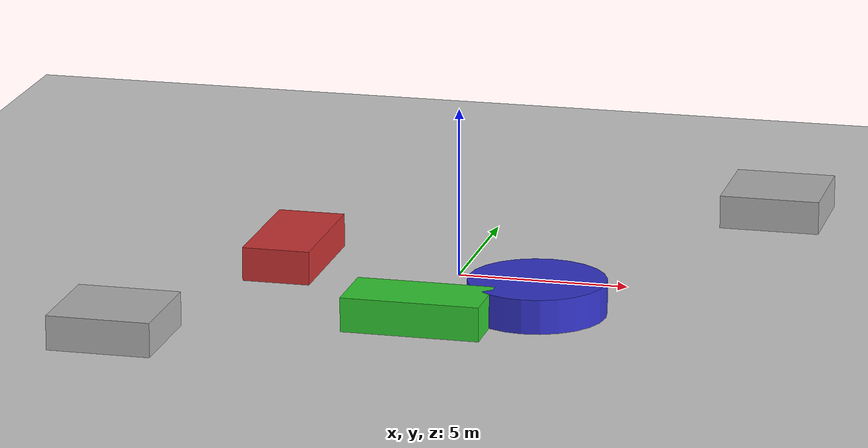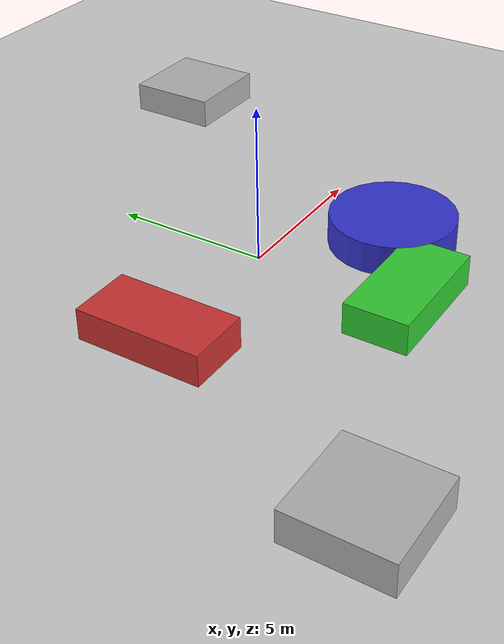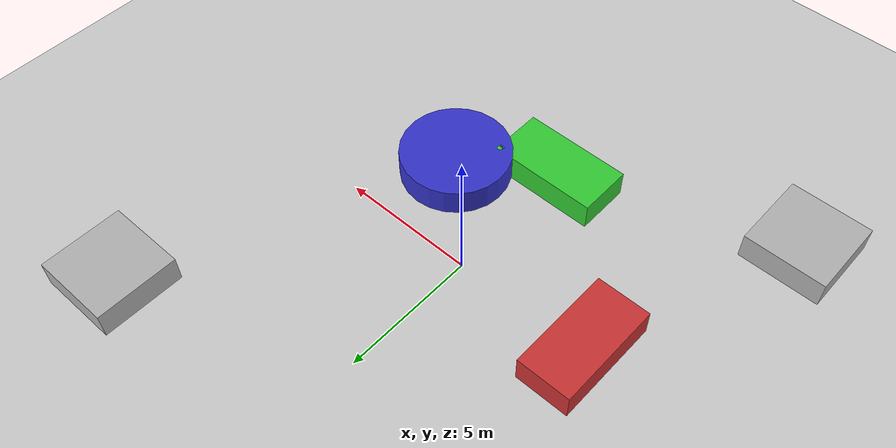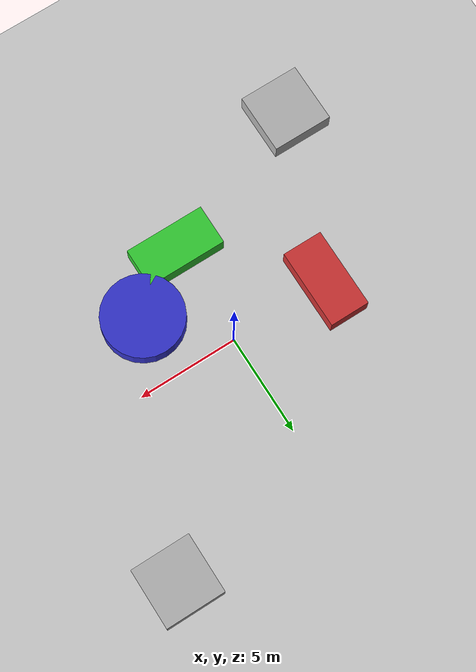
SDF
<?xml version="1.0" ?>
<sdf version="1.6">
  <world name="moving_platforms">
    <include>
      <uri>model://sun</uri>
    </include>
    <include>
      <uri>model://ground_plane</uri>
    </include>

    <!-- Static platforms -->
    <model name="platform1">
      <static>true</static>
      <pose>-8 -8 0.5 0 0 0</pose>
      <link name="link">
        <collision name="collision">
          <geometry>
            <box>
              <size>3 3 1</size>
            </box>
          </geometry>
        </collision>
        <visual name="visual">
          <geometry>
            <box>
              <size>3 3 1</size>
            </box>
          </geometry>
          <material>
            <ambient>0.7 0.7 0.7 1</ambient>
          </material>
        </visual>
      </link>
    </model>

    <model name="platform2">
      <static>true</static>
      <pose>8 8 0.5 0 0 0</pose>
      <link name="link">
        <collision name="collision">
          <geometry>
            <box>
              <size>3 3 1</size>
            </box>
          </geometry>
        </collision>
        <visual name="visual">
          <geometry>
            <box>
              <size>3 3 1</size>
            </box>
          </geometry>
          <material>
            <ambient>0.7 0.7 0.7 1</ambient>
          </material>
        </visual>
      </link>
    </model>

    <!-- Moving platform 1 -->
    <model name="moving_platform1">
      <pose>0 -5 0.5 0 0 0</pose>
      <link name="link">
        <inertial>
          <mass>10.0</mass>
          <inertia>
            <ixx>1.0</ixx>
            <ixy>0.0</ixy>
            <ixz>0.0</ixz>
            <iyy>1.0</iyy>
            <iyz>0.0</iyz>
            <izz>1.0</izz>
          </inertia>
        </inertial>
        <collision name="collision">
          <geometry>
            <box>
              <size>4 2 1</size>
            </box>
          </geometry>
        </collision>
        <visual name="visual">
          <geometry>
            <box>
              <size>4 2 1</size>
            </box>
          </geometry>
          <material>
            <ambient>0.2 0.8 0.2 1</ambient>
          </material>
        </visual>
      </link>
      <script>
        <loop>true</loop>
        <delay_start>0.0</delay_start>
        <auto_start>true</auto_start>
        <trajectory id="platform_trajectory1" type="swing">
          <waypoint>
            <time>0.0</time>
            <pose>0 -5 0.5 0 0 0</pose>
          </waypoint>
          <waypoint>
            <time>6.0</time>
            <pose>0 5 0.5 0 0 0</pose>
          </waypoint>
          <waypoint>
            <time>12.0</time>
            <pose>0 -5 0.5 0 0 0</pose>
          </waypoint>
        </trajectory>
      </script>
    </model>

    <!-- Moving platform 2 -->
    <model name="moving_platform2">
      <pose>-5 0 0.5 0 0 0</pose>
      <link name="link">
        <inertial>
          <mass>10.0</mass>
          <inertia>
            <ixx>1.0</ixx>
            <ixy>0.0</ixy>
            <ixz>0.0</ixz>
            <iyy>1.0</iyy>
            <iyz>0.0</iyz>
            <izz>1.0</izz>
          </inertia>
        </inertial>
        <collision name="collision">
          <geometry>
            <box>
              <size>2 4 1</size>
            </box>
          </geometry>
        </collision>
        <visual name="visual">
          <geometry>
            <box>
              <size>2 4 1</size>
            </box>
          </geometry>
          <material>
            <ambient>0.8 0.2 0.2 1</ambient>
          </material>
        </visual>
      </link>
      <script>
        <loop>true</loop>
        <delay_start>2.0</delay_start>
        <auto_start>true</auto_start>
        <trajectory id="platform_trajectory2" type="swing">
          <waypoint>
            <time>0.0</time>
            <pose>-5 0 0.5 0 0 0</pose>
          </waypoint>
          <waypoint>
            <time>4.0</time>
            <pose>5 0 0.5 0 0 0</pose>
          </waypoint>
          <waypoint>
            <time>8.0</time>
            <pose>-5 0 0.5 0 0 0</pose>
          </waypoint>
        </trajectory>
      </script>
    </model>

    <!-- Rotating platform -->
    <model name="rotating_platform">
      <pose>3 -3 0.5 0 0 0</pose>
      <link name="link">
        <inertial>
          <mass>5.0</mass>
          <inertia>
            <ixx>0.5</ixx>
            <ixy>0.0</ixy>
            <ixz>0.0</ixz>
            <iyy>0.5</iyy>
            <iyz>0.0</iyz>
            <izz>0.5</izz>
          </inertia>
        </inertial>
        <collision name="collision">
          <geometry>
            <cylinder>
              <radius>2</radius>
              <length>1</length>
            </cylinder>
          </geometry>
        </collision>
        <visual name="visual">
          <geometry>
            <cylinder>
              <radius>2</radius>
              <length>1</length>
            </cylinder>
          </geometry>
          <material>
            <ambient>0.2 0.2 0.8 1</ambient>
          </material>
        </visual>
      </link>
      <script>
        <loop>true</loop>
        <delay_start>0.0</delay_start>
        <auto_start>true</auto_start>
        <trajectory id="rotation_trajectory" type="swing">
          <waypoint>
            <time>0.0</time>
            <pose>3 -3 0.5 0 0 0</pose>
          </waypoint>
          <waypoint>
            <time>8.0</time>
            <pose>3 -3 0.5 0 0 6.28</pose>
          </waypoint>
        </trajectory>
      </script>
    </model>

  </world>
</sdf>
